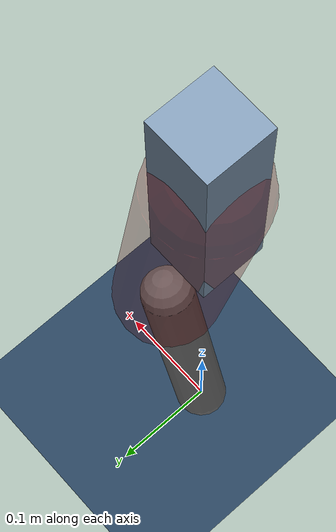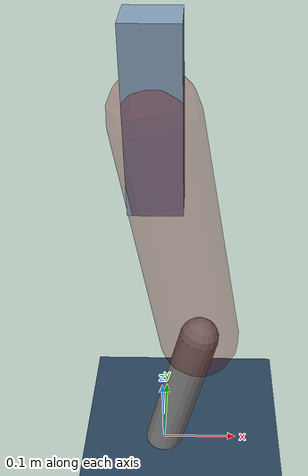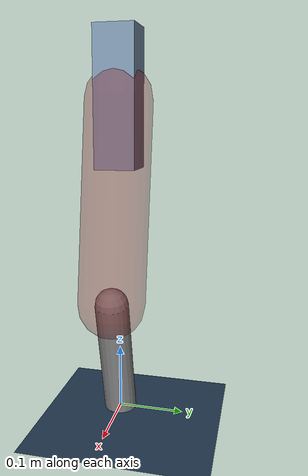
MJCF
<mujoco model="Hopper2D">
	<compiler inertiafromgeom="true" angle="radian" />
	<option timestep="0.001" integrator="implicit" cone="elliptic" solver="Newton" tolerance="1e-10" />

	<default>
		<geom contype="1" conaffinity="1" condim="3" friction="2 0.005 0.0001" solref="0.005 1" />
		<joint limited="true" damping="0.1" />
	</default>

	<asset>
		<texture name="skybox" type="skybox" builtin="gradient" rgb1=".4 .6 .8" rgb2="0 0 0" width="800" height="800" />
		<texture name="grid" type="2d" builtin="checker" rgb1=".1 .2 .3" rgb2=".2 .3 .4" width="300" height="300" mark="edge" markrgb=".2 .3 .4" />
		<material name="ground" texture="grid" texrepeat="1 1" texuniform="true" reflectance="0.1" />
		<material name="leg" rgba="0.5 0.6 0.7 1" />
	</asset>

	<worldbody>

		<geom name="floor" type="plane" size="5 5 0.25" material="ground" />

		<light directional="false" diffuse="0.8 0.8 0.8" specular="0.3 0.3 0.3" pos="0 0 2" dir="0 0 -1" />
		<light mode="targetbodycom" target="base" directional="false" diffuse="0.8 0.8 0.8" specular="0.3 0.3 0.3" pos="0 0 2" dir="0 0 -1" />

		<camera name="fixed" pos="0 -2 1" xyaxes="1 0 0 0 0 1" />
		<camera name="tracking" mode="trackcom" pos="0 -3 1" />

		<body name="root" pos="0 0 0.48327409630114315">
			<joint name="slide_x" type="slide" axis="1 0 0" range="-100 100" />
			<joint name="slide_z" type="slide" axis="0 0 1" range="0 10" />

			<body name="base" pos="0 0 0">
				<geom name="torso" type="box" size="0.03 0.03 0.1" mass="2.426" material="leg" />

				<body name="link1" pos="0 0 0" euler="0 1.409371331119662 0">
					<joint type="hinge" axis="0 -1 0" pos="0 0 0" name="hinge1" limited="true" range="-3.14 3.14" stiffness="0" damping="0.1" />
					<geom name="thigh" type="capsule" fromto="0 0 0 0.299868803526104 0 0" size="0.05" rgba="0.5 0 0 0.3" mass="0.9883457695204809" />

					<body name="link2" pos="0.299868803526104 0 0" euler="0 0.413277854179084 0">
						<joint type="hinge" axis="0 -1 0" pos="0 0 0" name="hinge2" limited="true" range="-3.14 3.14" stiffness="0" damping="0.1" />
						<geom name="shank" type="capsule" fromto="0 0 0 0.19340529277503918 0 0" size="0.025" mass="0.3953242342200313" />

					</body>
				</body>
			</body>
		</body>
	</worldbody>

	<actuator>
		<motor name="torque1" joint="hinge1" ctrlrange="-88.17661243175453 88.17661243175453" ctrllimited="true" gear="1" />
		<motor name="torque2" joint="hinge2" ctrlrange="-86.16960448134066 86.16960448134066" ctrllimited="true" gear="1" />
	</actuator>
</mujoco>
